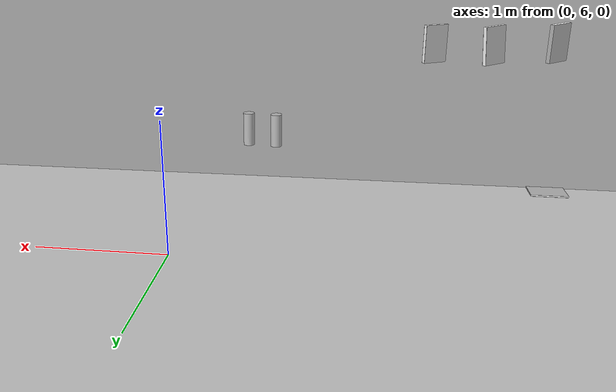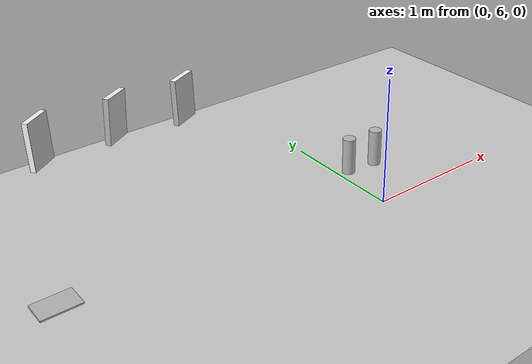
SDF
<sdf version="1.6">
 <world name="default">
  <model name="ground_plane">
   <static>1</static>
   <link name="link">
    <collision name="collision">
     <geometry><plane><normal>0 0 1</normal><size>100 100</size></plane></geometry>
     <surface>
      <contact><collide_bitmask>65535</collide_bitmask></contact>
      <friction><ode><mu>100</mu><mu2>50</mu2></ode></friction>
     </surface>
    </collision>
    <visual name="visual">
     <cast_shadows>0</cast_shadows>
     <geometry><plane><normal>0 0 1</normal><size>100 100</size></plane></geometry>
     <material>
      <script><uri>file://media/materials/scripts/gazebo.material</uri><name>Gazebo/Grey</name></script>
     </material>
    </visual>
   </link>
  </model>
  <model name="book_1">
   <link name="cover">
    <pose>0 -0.000108 0.015405 0 -0 0</pose>
    <visual name="visual">
     <geometry><box><size>0.245 0.16 0.03</size></box></geometry>
     <material>
      <script>
       <uri>model://book_1/materials/scripts</uri>
       <uri>model://book_1/materials/textures</uri>
       <name>book_1</name>
      </script>
     </material>
    </visual>
    <collision name="collision"><geometry><box><size>0.245 0.16 0.03</size></box></geometry></collision>
   </link>
   <link name="page">
    <pose>0 0.000608 0.015405 0 -0 0</pose>
    <visual name="visual">
     <geometry><box><size>0.24502 0.15862 0.028</size></box></geometry>
     <material>
      <lighting>1</lighting>
      <ambient>1 1 1 1</ambient>
      <diffuse>1 1 1 1</diffuse>
      <specular>0.01 0.01 0.01 1</specular>
      <emissive>0 0 0 1</emissive>
      <shader type="vertex"><normal_map>__default__</normal_map></shader>
     </material>
    </visual>
    <collision name="collision"><geometry><box><size>0.245 0.16 0.03</size></box></geometry></collision>
   </link>
   <static>1</static>
   <pose>-1.79505 5.71073 1.49971 -0.719177 1.55836 -1.81594</pose>
  </model>
  <model name="book_10">
   <link name="cover">
    <pose>0 -0.000108 0.015405 0 -0 0</pose>
    <visual name="visual">
     <geometry><box><size>0.245 0.16 0.03</size></box></geometry>
     <material>
      <script>
       <uri>model://book_10/materials/scripts</uri>
       <uri>model://book_10/materials/textures</uri>
       <name>book_10</name>
      </script>
     </material>
    </visual>
    <collision name="collision"><geometry><box><size>0.245 0.16 0.03</size></box></geometry></collision>
   </link>
   <link name="page">
    <pose>0 0.000608 0.015405 0 -0 0</pose>
    <visual name="visual">
     <geometry><box><size>0.24502 0.15862 0.028</size></box></geometry>
     <material>
      <lighting>1</lighting>
      <ambient>1 1 1 1</ambient>
      <diffuse>1 1 1 1</diffuse>
      <specular>0.01 0.01 0.01 1</specular>
      <emissive>0 0 0 1</emissive>
      <shader type="vertex"><normal_map>__default__</normal_map></shader>
     </material>
    </visual>
    <collision name="collision"><geometry><box><size>0.245 0.16 0.03</size></box></geometry></collision>
   </link>
   <static>1</static>
   <pose>-2.16776 5.73017 1.50127 -2.29494 1.50411 3.00773</pose>
  </model>
  <model name="book_11">
   <link name="cover">
    <pose>0 -0.000108 0.015405 0 -0 0</pose>
    <visual name="visual">
     <geometry><box><size>0.245 0.16 0.03</size></box></geometry>
     <material>
      <script>
       <uri>model://book_11/materials/scripts</uri>
       <uri>model://book_11/materials/textures</uri>
       <name>book_11</name>
      </script>
     </material>
    </visual>
    <collision name="collision"><geometry><box><size>0.245 0.16 0.03</size></box></geometry></collision>
   </link>
   <link name="page">
    <pose>0 0.000608 0.015405 0 -0 0</pose>
    <visual name="visual">
     <geometry><box><size>0.24502 0.15862 0.028</size></box></geometry>
     <material>
      <lighting>1</lighting>
      <ambient>1 1 1 1</ambient>
      <diffuse>1 1 1 1</diffuse>
      <specular>0.01 0.01 0.01 1</specular>
      <emissive>0 0 0 1</emissive>
      <shader type="vertex"><normal_map>__default__</normal_map></shader>
     </material>
    </visual>
    <collision name="collision"><geometry><box><size>0.245 0.16 0.03</size></box></geometry></collision>
   </link>
   <static>1</static>
   <pose>-2.5741 5.69045 1.51698 1.05167 -1.53286 1.16293</pose>
  </model>
  <model name="book_21">
   <link name="cover">
    <pose>0 -0.000108 0.005 0 -0 0</pose>
    <visual name="visual">
     <geometry><box><size>0.245 0.16 0.01</size></box></geometry>
     <material>
      <script>
       <uri>model://book_21/materials/scripts</uri>
       <uri>model://book_21/materials/textures</uri>
       <name>book_21</name>
      </script>
     </material>
    </visual>
    <collision name="collision"><geometry><box><size>0.245 0.16 0.01</size></box></geometry></collision>
   </link>
   <link name="page">
    <pose>0 0.000608 0.005 0 -0 0</pose>
    <visual name="visual">
     <geometry><box><size>0.24502 0.15862 0.008</size></box></geometry>
     <material>
      <lighting>1</lighting>
      <ambient>1 1 1 1</ambient>
      <diffuse>1 1 1 1</diffuse>
      <specular>0.01 0.01 0.01 1</specular>
      <emissive>0 0 0 1</emissive>
      <shader type="vertex"><normal_map>__default__</normal_map></shader>
     </material>
    </visual>
    <collision name="collision"><geometry><box><size>0.245 0.16 0.008</size></box></geometry></collision>
   </link>
   <static>1</static>
   <pose>-2.60644 5.76371 0.517583 0 -0 0</pose>
  </model>
  <model name="pringles_2">
   <static>0</static>
   <link name="link">
    <inertial>
     <mass>0.25</mass>
     <inertia><ixx>0</ixx><ixy>0</ixy><ixz>0</ixz><iyy>0</iyy><iyz>0</iyz><izz>0</izz></inertia>
    </inertial>
    <collision name="collision">
     <geometry><cylinder><radius>0.04</radius><length>0.235</length></cylinder></geometry>
    </collision>
    <visual name="visual">
     <geometry><cylinder><radius>0.04</radius><length>0.235</length></cylinder></geometry>
     <material>
      <script>
       <uri>model://pringles/material/scripts</uri>
       <uri>model://pringles/material/textures</uri>
       <name>Custom/pringles</name>
      </script>
     </material>
    </visual>
    <velocity_decay><linear>0</linear><angular>0</angular></velocity_decay>
   </link>
   <pose>-0.730142 5.58779 0.838508 0.000187 4.3e-05 0.000346</pose>
  </model>
  <model name="pringles2_0">
   <static>0</static>
   <link name="link">
    <inertial>
     <mass>0.25</mass>
     <inertia><ixx>0</ixx><ixy>0</ixy><ixz>0</ixz><iyy>0</iyy><iyz>0</iyz><izz>0</izz></inertia>
    </inertial>
    <collision name="collision">
     <pose>0 0 0.12 -3.14159 -0 0</pose>
     <geometry><cylinder><radius>0.04</radius><length>0.235</length></cylinder></geometry>
    </collision>
    <visual name="visual">
     <pose>0 0 0.12 -3.14159 -0 0</pose>
     <geometry><cylinder><radius>0.04</radius><length>0.235</length></cylinder></geometry>
     <material>
      <script>
       <uri>model://pringles2/material/scripts</uri>
       <uri>model://pringles2/material/textures</uri>
       <name>Custom/pringles2</name>
      </script>
     </material>
    </visual>
    <velocity_decay><linear>0</linear><angular>0</angular></velocity_decay>
   </link>
   <pose>-0.529767 5.57161 0.718507 -4.8e-05 0.00018 4.4e-05</pose>
  </model>
 </world>
</sdf>
